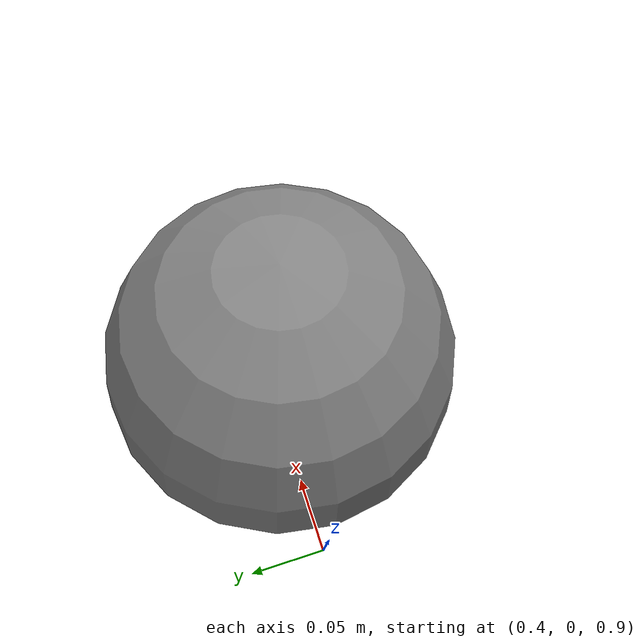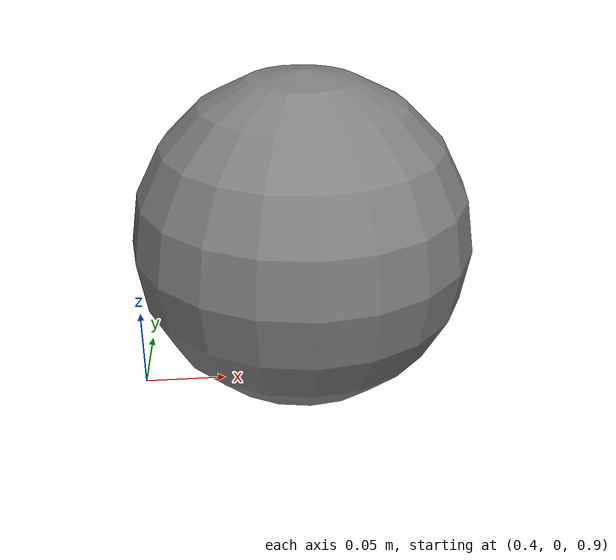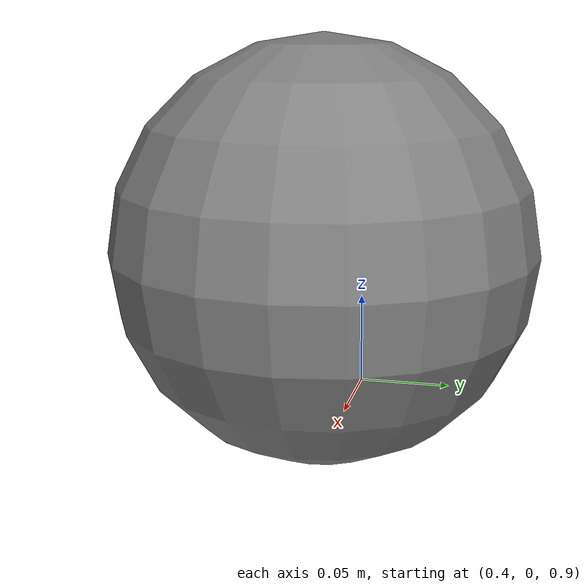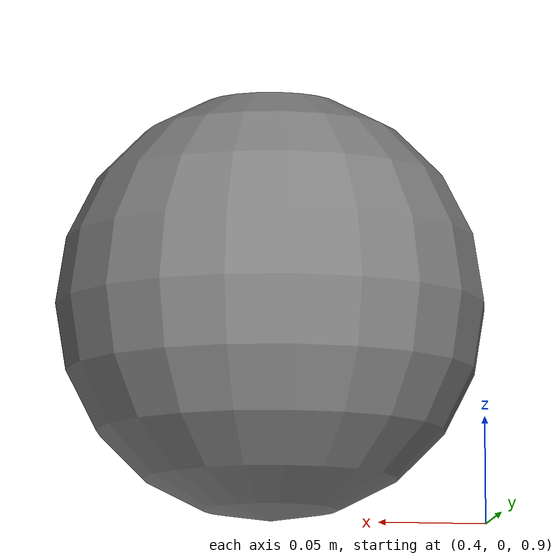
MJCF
<mujoco model="gravcomp_hierarchy">
            <option gravity="0 0 -9.81" timestep="0.001"/>
            <worldbody>
                <body name="link" pos="0 0 1">
                    <joint name="hinge" type="hinge" axis="0 1 0"
                           stiffness="100" damping="10"/>
                    <geom type="sphere" size="0.1" mass="2.0" pos="0.5 0 0"
                          contype="0" conaffinity="0"/>
                    <inertial pos="0.5 0 0" mass="2.0" diaginertia="0.008 0.008 0.008"/>
                </body>
            </worldbody>
        </mujoco>
